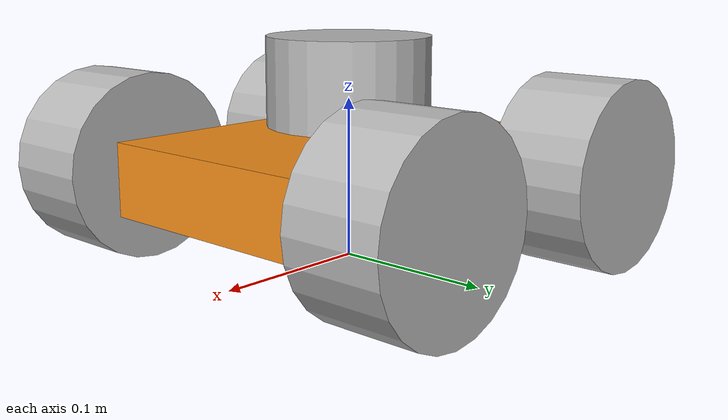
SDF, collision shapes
<?xml version="1.0" ?>
<sdf version="1.5">
  <model name="basic_mobile_bot">
  <static>false</static>

  <!-- ****************** ROBOT BASE FOOTPRINT ***************************  -->
  <pose>0.0 0.0 0.0 0.0 0.0 0.0</pose>
  <link name="base_footprint"/>

  <!-- ********************** ROBOT BASE *********************************  -->
  <link name="base_link">

    <inertial>
      <mass>2</mass>
      <inertia>
        <ixx>0.00545</ixx>
        <ixy>0</ixy>
        <ixz>0</ixz>
        <iyy>0.00841</iyy>
        <iyz>0</iyz>
        <izz>0.0131</izz>
      </inertia>
    </inertial>

    <collision name="base_collision">
      <pose>0 0 0.053 0 0 0</pose>
      <geometry>
        <box>
          <!--    X(largo)    Y(ancho)    Z(alto)     -->
          <size>0.220 0.175 0.046</size>
        </box>
      </geometry>
    </collision>

    <visual name="base_visual">
      <!-- Z= 0.058-0.005 ROLL PITCH YAW-->
      <pose>0 0 0.053 0 0 0</pose>
      <geometry>
        <box>
          <size>0.220 0.175 0.046</size>
        </box>
      </geometry>
      <material>
        <script>
          <uri>/usr/share/gazebo-11/media/materials/scripts/gazebo.material</uri>
          <name>Gazebo/Orange</name>
        </script>
      </material>
    </visual>
  </link>

  <!-- *********************** IMU SENSOR SETUP **************************  -->
  <link name="imu_link">
    <gravity>true</gravity>
    <sensor name="bmb_imu" type="imu">
      <always_on>true</always_on>
      <update_rate>100</update_rate>
      <visualize>true</visualize>
      <imu>
        <orientation>
          <x>
            <noise type="gaussian">
              <mean>0.0</mean>
              <stddev>2e-3</stddev>
            </noise>
          </x>
          <y>
            <noise type="gaussian">
              <mean>0.0</mean>
              <stddev>2e-3</stddev>
            </noise>
          </y>
          <z>
            <noise type="gaussian">
              <mean>0.0</mean>
              <stddev>2e-3</stddev>
            </noise>
          </z>
        </orientation>
        <angular_velocity>
          <x>
            <noise type="gaussian">
              <mean>0.0</mean>
              <stddev>2e-4</stddev>
            </noise>
          </x>
          <y>
            <noise type="gaussian">
              <mean>0.0</mean>
              <stddev>2e-4</stddev>
            </noise>
          </y>
          <z>
            <noise type="gaussian">
              <mean>0.0</mean>
              <stddev>2e-4</stddev>
            </noise>
          </z>
        </angular_velocity>
        <linear_acceleration>
          <x>
            <noise type="gaussian">
              <mean>0.0</mean>
              <stddev>1.7e-2</stddev>
            </noise>
          </x>
          <y>
            <noise type="gaussian">
              <mean>0.0</mean>
              <stddev>1.7e-2</stddev>
            </noise>
          </y>
          <z>
            <noise type="gaussian">
              <mean>0.0</mean>
              <stddev>1.7e-2</stddev>
            </noise>
          </z>
        </linear_acceleration>
      </imu>
      <plugin name="basic_mobile_bot_imu" filename="libgazebo_ros_imu_sensor.so">
        <initial_orientation_as_reference>false</initial_orientation_as_reference>
        <frame_name>imu_link</frame_name>
        <ros>
          <namespace>/imu</namespace>
          <remapping>~/out:=data</remapping>
        </ros>
      </plugin>
    </sensor>
  </link>

  <!-- *********************** GPS SETUP *********************************  -->
  <link name="gps_link">
    <sensor name="bmb_gps" type="gps">
      <always_on>true</always_on>
      <update_rate>10.0</update_rate>
      <gps>
        <position_sensing>
          <horizontal>
            <noise type="gaussian">
              <mean>0.0</mean>
              <stddev>1e-2</stddev>
            </noise>
          </horizontal>
          <vertical>
            <noise type="gaussian">
              <mean>0.0</mean>
              <stddev>1</stddev>
            </noise>
          </vertical>
        </position_sensing>
      </gps>
      <!--Plugin de GPS-->
      <plugin name="basic_mobile_bot_gps" filename="libgazebo_ros_gps_sensor.so">
        <ros>
          <!--Mensaje de tipo NavSatFix-->
          <remapping>~/out:=gps/fix</remapping>
        </ros>
      </plugin>
    </sensor>
  </link>

  <!-- *********************** LIDAR SETUP *********************************  -->
      <link name="base_scan">
        <inertial>
          <pose>0 0 0.111 0 0 0</pose>
          <inertia>
            <ixx>0.001</ixx>
            <ixy>0.000</ixy>
            <ixz>0.000</ixz>
            <iyy>0.001</iyy>
            <iyz>0.000</iyz>
            <izz>0.001</izz>
          </inertia>
          <mass>0.125</mass>
        </inertial>

        <collision name="lidar_sensor_collision">
          <pose>0 0 0.111 0 0 0</pose>
          <geometry>
            <cylinder>
              <radius>0.0508</radius>
              <length>0.055</length>
            </cylinder>
          </geometry>
        </collision>

        <visual name="lidar_sensor_visual">
          <pose>0 0 0.121 0 0 0</pose>
          <geometry>
            <mesh>
              <uri>model://turtlebot3_common/meshes/lds.dae</uri>
              <scale>0.001 0.001 0.001</scale>
            </mesh>
          </geometry>
        </visual>

        <sensor name="hls_lfcd_lds" type="ray">
          <always_on>true</always_on>
          <visualize>true</visualize>
          <pose>0 0 0.121 0 0 0</pose>
          <update_rate>5</update_rate>
          <ray>
            <scan>
              <horizontal>
                <samples>360</samples>
                <resolution>1.000000</resolution>
                <min_angle>0.000000</min_angle>
                <max_angle>6.280000</max_angle>
              </horizontal>
            </scan>
            <range>
              <min>0.120000</min>
              <max>3.5</max>
              <resolution>0.015000</resolution>
            </range>
            <noise>
              <type>gaussian</type>
              <mean>0.0</mean>
              <stddev>0.01</stddev>
            </noise>
          </ray>
          <plugin name="turtlebot3_laserscan" filename="libgazebo_ros_ray_sensor.so">
            <ros>
                <remapping>~/out:=scan</remapping>
            </ros>
            <output_type>sensor_msgs/LaserScan</output_type>
            <frame_name>base_scan</frame_name>
          </plugin>
        </sensor>
      </link>

  <!-- *********************** DRIVE WHEELS ******************************  -->
  <!-- Rear Left Wheel       -->
  <link name="drivewhl_rl_link">

    <inertial>
      <mass>0.3</mass>
      <inertia>
        <ixx>0.000354</ixx>
        <ixy>0</ixy>
        <ixz>0</ixz>
        <iyy>0.000354</iyy>
        <iyz>0</iyz>
        <izz>0.00054</izz>
      </inertia>
    </inertial>

    <!--      X    Y    Z     ROLL  PITCH   YAW     -->
    <pose>-0.084 0.1175 0.058 0 1.570796 1.570796</pose>
    <!-- Y = 0.0875m + wheel_length/2 -->
    <collision name="drivewhl_rl_collision">
      <geometry>
        <cylinder>
          <radius>0.058</radius>
          <length>0.06</length>
        </cylinder>
      </geometry>
        <surface>
          <friction>
            <ode>
              <mu>1</mu>
              <mu2>1</mu2>
              <slip1>0</slip1>
              <slip2>0</slip2>
            </ode>
          </friction>
          <contact>
            <ode>
              <soft_cfm>0</soft_cfm>
              <soft_erp>0.2</soft_erp>
              <kp>1e+13</kp>
              <kd>1</kd>
              <max_vel>0.01</max_vel>
              <min_depth>0.01</min_depth>
            </ode>
          </contact>
        </surface>
    </collision>

    <visual name="drivewhl_rl_visual">
      <geometry>
        <cylinder>
          <radius>0.058</radius>
          <length>0.06</length>
        </cylinder>
      </geometry>
    </visual>
  </link>

  <!-- Rear Right Wheel      -->
  <link name="drivewhl_rr_link">

    <inertial>
      <mass>0.3</mass>
      <inertia>
        <ixx>0.000354</ixx>
        <ixy>0</ixy>
        <ixz>0</ixz>
        <iyy>0.000354</iyy>
        <iyz>0</iyz>
        <izz>0.00054</izz>
      </inertia>
    </inertial>

    <pose>-0.084 -0.1175 0.058 0 1.570796 1.570796</pose>

    <collision name="drivewhl_rr_collision">
      <geometry>
        <cylinder>
          <radius>0.058</radius>
          <length>0.06</length>
        </cylinder>
      </geometry>
        <surface>
          <friction>
            <ode>
              <mu>1</mu>
              <mu2>1</mu2>
              <slip1>0</slip1>
              <slip2>0</slip2>
            </ode>
          </friction>
          <contact>
            <ode>
              <soft_cfm>0</soft_cfm>
              <soft_erp>0.2</soft_erp>
              <kp>1e+13</kp>
              <kd>1</kd>
              <max_vel>0.01</max_vel>
              <min_depth>0.01</min_depth>
            </ode>
          </contact>
        </surface>
    </collision>

    <visual name="drivewhl_rr_visual">
      <geometry>
        <cylinder>
          <radius>0.058</radius>
          <length>0.06</length>
        </cylinder>
      </geometry>
    </visual>
  </link>

   <!-- Front Left Wheel     -->
  <link name="drivewhl_fl_link">

    <inertial>
      <mass>0.3</mass>
      <inertia>
        <ixx>0.000354</ixx>
        <ixy>0</ixy>
        <ixz>0</ixz>
        <iyy>0.000354</iyy>
        <iyz>0</iyz>
        <izz>0.00054</izz>
      </inertia>
    </inertial>

    <!--      X    Y    Z alpha beta     gamma     -->
    <pose>0.084 0.1175 0.058 0 1.570796 1.570796</pose>

    <collision name="drivewhl_fl_collision">
      <geometry>
        <cylinder>
          <radius>0.058</radius>
          <length>0.06</length>
        </cylinder>
      </geometry>
        <surface>
          <friction>
            <ode>
              <mu>1</mu>
              <mu2>1</mu2>
              <slip1>0</slip1>
              <slip2>0</slip2>
            </ode>
          </friction>
          <contact>
            <ode>
              <soft_cfm>0</soft_cfm>
              <soft_erp>0.2</soft_erp>
              <kp>1e+13</kp>
              <kd>1</kd>
              <max_vel>0.01</max_vel>
              <min_depth>0.01</min_depth>
            </ode>
          </contact>
        </surface>
    </collision>

    <visual name="drivewhl_fl_visual">
      <geometry>
        <cylinder>
          <radius>0.058</radius>
          <length>0.06</length>
        </cylinder>
      </geometry>
    </visual>
  </link>

  <!-- Front Right Wheel      -->
  <link name="drivewhl_fr_link">

    <inertial>
      <mass>0.3</mass>
      <inertia>
        <ixx>0.000354</ixx>
        <ixy>0</ixy>
        <ixz>0</ixz>
        <iyy>0.000354</iyy>
        <iyz>0</iyz>
        <izz>0.00054</izz>
      </inertia>
    </inertial>

    <pose>0.084 -0.1175 0.058 0 1.570796 1.570796</pose>

    <collision name="drivewhl_fr_collision">
      <geometry>
        <cylinder>
          <radius>0.058</radius>
          <length>0.06</length>
        </cylinder>
      </geometry>
        <surface>
          <friction>
            <ode>
              <mu>1</mu>
              <mu2>1</mu2>
              <slip1>0</slip1>
              <slip2>0</slip2>
            </ode>
          </friction>
          <contact>
            <ode>
              <soft_cfm>0</soft_cfm>
              <soft_erp>0.2</soft_erp>
              <kp>1e+13</kp>
              <kd>1</kd>
              <max_vel>0.01</max_vel>
              <min_depth>0.01</min_depth>
            </ode>
          </contact>
        </surface>
    </collision>

    <visual name="drivewhl_fr_visual">
      <geometry>
        <cylinder>
          <radius>0.058</radius>
          <length>0.06</length>
        </cylinder>
      </geometry>
    </visual>
  </link>

  <!-- ************************ JOINTS ***********************************  -->
  <!-- Pose of the joint is the same as the child link frame -->
  <!-- Axis is the axis of rotation relative to the child link frame -->

  <joint name="base_joint" type="fixed">
    <parent>base_footprint</parent>
    <child>base_link</child>
    <pose>0 0 0 0 0 0</pose>
  </joint>

  <joint name="drivewhl_rl_joint" type="revolute">
    <parent>base_link</parent>
    <child>drivewhl_rl_link</child>
    <pose>0 0 0 0 0 0</pose>
    <axis>
      <xyz>0 0 1</xyz>
    </axis>
  </joint>

  <joint name="drivewhl_rr_joint" type="revolute">
    <parent>base_link</parent>
    <child>drivewhl_rr_link</child>
    <pose>0 0 0 0 0 0</pose>
    <axis>
      <xyz>0 0 1</xyz>
    </axis>
  </joint>

    <joint name="drivewhl_fl_joint" type="revolute">
    <parent>base_link</parent>
    <child>drivewhl_fl_link</child>
    <pose>0 0 0 0 0 0</pose>
    <axis>
      <xyz>0 0 1</xyz>
    </axis>
  </joint>

    <joint name="drivewhl_fr_joint" type="revolute">
    <parent>base_link</parent>
    <child>drivewhl_fr_link</child>
    <pose>0 0 0 0 0 0</pose>
    <axis>
      <xyz>0 0 1</xyz>
    </axis>
  </joint>

  <joint name="imu_joint" type="fixed">
    <parent>base_link</parent>
    <child>imu_link</child>
    <pose>0 0 0 0 0 0</pose>
  </joint>

  <joint name="gps_joint" type="fixed">
    <parent>base_link</parent>
    <child>gps_link</child>
    <pose>0 0 0 0 0 0</pose>
  </joint>

  <joint name="lidar_joint" type="fixed">
     <parent>base_link</parent>
     <child>base_scan</child>
     <pose>0 0 0 0 0 0</pose>
        <axis>
          <xyz>0 0 1</xyz>
        </axis>
  </joint>

 <!-- *********************** WHEEL ODOMETRY ***************************    -->
  <plugin name='skid_steer_drive' filename='libgazebo_ros_diff_drive.so'>

    <!-- Number of wheel pairs -->
    <num_wheel_pairs>2</num_wheel_pairs>

    <!-- wheels0 FRONT wheels-->
    <left_joint>drivewhl_fl_joint</left_joint>
    <right_joint>drivewhl_fr_joint</right_joint>

    <!-- wheels1 REAR wheels-->
    <left_joint>drivewhl_rl_joint</left_joint>
    <right_joint>drivewhl_rr_joint</right_joint>

    <!-- kinematics -->
    <wheel_separation>0.26</wheel_separation>
    <wheel_separation>0.26</wheel_separation>

    <wheel_diameter>0.116</wheel_diameter>
    <wheel_diameter>0.116</wheel_diameter>

    <!-- Receive velocity commands on this ROS topic -->
    <command_topic>cmd_vel</command_topic>

    <!-- limits -->
    <max_wheel_torque>20</max_wheel_torque>
    <max_wheel_acceleration>1.0</max_wheel_acceleration>

    <!-- output -->
    <publish_odom>true</publish_odom>
    <publish_odom_tf>true</publish_odom_tf>
    <publish_wheel_tf>true</publish_wheel_tf>

    <odometry_topic>odom</odometry_topic>
    <odometry_frame>odom</odometry_frame>
    <robot_base_frame>base_footprint</robot_base_frame>

    <ros>
      <remapping>odom:=wheel/odometry</remapping>
    </ros>

  </plugin>

 <!-- *********************** JOINT STATE PUBLISHER *********************   -->

  <plugin name="basic_mobile_bot_joint_state" filename="libgazebo_ros_joint_state_publisher.so">
    <ros>
      <remapping>~/out:=joint_states</remapping>
    </ros>
    <update_rate>30</update_rate>
    <joint_name>drivewhl_rl_joint</joint_name>
    <joint_name>drivewhl_rr_joint</joint_name>
    <joint_name>drivewhl_fl_joint</joint_name>
    <joint_name>drivewhl_fr_joint</joint_name>
  </plugin>

  </model>
</sdf>
